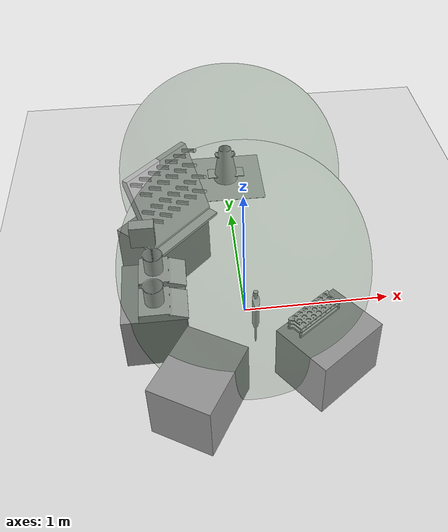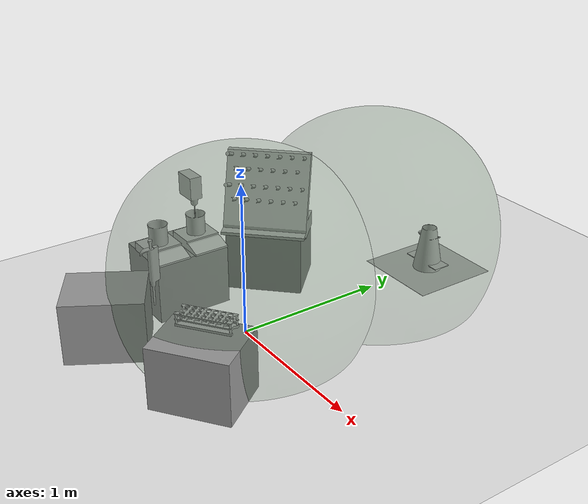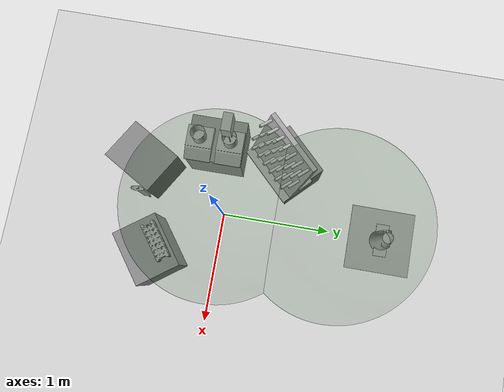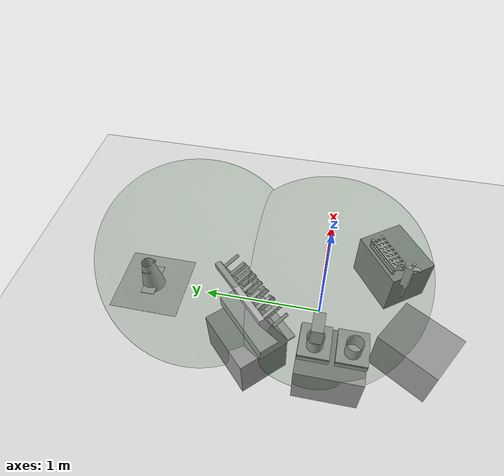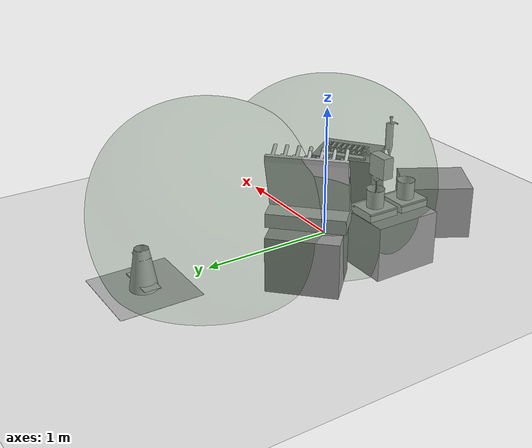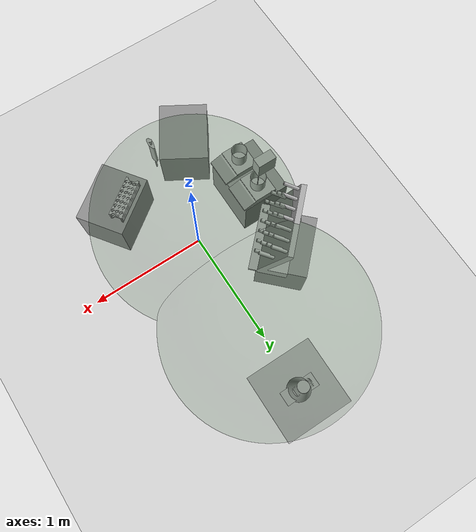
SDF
<sdf version="1.7">
 <world name="solution_preparing">
  <plugin name="gz::sim::systems::Physics" filename="gz-sim-physics-system"/>
  <plugin name="gz::sim::systems::UserCommands" filename="gz-sim-user-commands-system"/>
  <plugin name="gz::sim::systems::SceneBroadcaster" filename="gz-sim-scene-broadcaster-system"/>
  <light name="sun" type="directional">
   <pose>0 0 10 0 -0 0</pose>
   <diffuse>0.8 0.8 0.8 1</diffuse>
   <specular>0.2 0.2 0.2 1</specular>
   <attenuation>
    <range>1000</range>
    <constant>0.9</constant>
    <linear>0.01</linear>
    <quadratic>0.001</quadratic>
   </attenuation>
   <direction>-0.5 0.1 -0.9</direction>
   <spot><inner_angle>0</inner_angle><outer_angle>0</outer_angle><falloff>0</falloff></spot>
  </light>
  <model name="ground_plane">
   <static>1</static>
   <link name="link">
    <collision name="collision">
     <geometry><plane><normal>0 0 1</normal><size>1 1</size></plane></geometry>
    </collision>
    <visual name="visual">
     <geometry><plane><normal>0 0 1</normal><size>100 100</size></plane></geometry>
     <material>
      <ambient>0.8 0.8 0.8 1</ambient>
      <diffuse>0.8 0.8 0.8 1</diffuse>
      <specular>0.8 0.8 0.8 1</specular>
     </material>
    </visual>
   </link>
  </model>
  <model name="cone">
   <pose>0 1.5 0 0 -0 0</pose>
   <static>1</static>
   <link name="link">
    <collision name="collision">
     <geometry><mesh><uri>file://models/analyze/meshes/cone.stl</uri><scale>1 1 1</scale></mesh></geometry>
    </collision>
    <visual name="visual">
     <geometry><mesh><uri>file://models/analyze/meshes/cone.stl</uri><scale>1 1 1</scale></mesh></geometry>
    </visual>
   </link>
  </model>
  <model name="sheet">
   <pose>0 1.5 0 0 -0 0</pose>
   <static>1</static>
   <link name="link">
    <collision name="collision">
     <geometry><mesh><uri>file://models/analyze/meshes/sheet.stl</uri><scale>1 1 1</scale></mesh></geometry>
    </collision>
    <visual name="visual">
     <geometry><mesh><uri>file://models/analyze/meshes/sheet.stl</uri><scale>1 1 1</scale></mesh></geometry>
    </visual>
   </link>
  </model>
  <model name="scale">
   <pose>-0.53 0 0.4 0 -0 1.5708</pose>
   <static>1</static>
   <link name="link">
    <collision name="collision">
     <geometry><mesh><uri>file://models/solution_preparing/scale.stl</uri><scale>1 1 1</scale></mesh></geometry>
    </collision>
    <visual name="visual">
     <geometry><mesh><uri>file://models/solution_preparing/scale.stl</uri><scale>1 1 1</scale></mesh></geometry>
    </visual>
   </link>
  </model>
  <model name="tube_tripod">
   <pose>0.37052 -0.471781 0.4 0 0 -2.51458</pose>
   <static>1</static>
   <link name="link">
    <collision name="collision">
     <geometry>
      <mesh><uri>file://models/solution_preparing/tube_tripod.stl</uri><scale>1 1 1</scale></mesh>
     </geometry>
    </collision>
    <visual name="visual">
     <geometry>
      <mesh><uri>file://models/solution_preparing/tube_tripod.stl</uri><scale>1 1 1</scale></mesh>
     </geometry>
    </visual>
   </link>
  </model>
  <model name="stirrer">
   <pose>-0.58 0 0.4 0 -0 1.5708</pose>
   <static>1</static>
   <link name="link">
    <collision name="collision">
     <geometry><mesh><uri>file://models/solution_preparing/stirrer.stl</uri><scale>1 1 1</scale></mesh></geometry>
    </collision>
    <visual name="visual">
     <geometry><mesh><uri>file://models/solution_preparing/stirrer.stl</uri><scale>1 1 1</scale></mesh></geometry>
    </visual>
   </link>
  </model>
  <model name="dryer">
   <pose>-0.52 0.54 0.4 0 0 -0.785397</pose>
   <static>1</static>
   <link name="link">
    <collision name="collision">
     <geometry><mesh><uri>file://models/solution_preparing/dryer.stl</uri><scale>1 1 1</scale></mesh></geometry>
    </collision>
    <visual name="visual">
     <geometry><mesh><uri>file://models/solution_preparing/dryer.stl</uri><scale>1 1 1</scale></mesh></geometry>
    </visual>
   </link>
  </model>
  <model name="dosator">
   <pose>0 -0.6 0.4 0 -0 1.56841</pose>
   <static>1</static>
   <link name="link">
    <collision name="collision">
     <geometry><mesh><uri>file://models/solution_preparing/dosator.stl</uri><scale>1 1 1</scale></mesh></geometry>
    </collision>
    <visual name="visual">
     <geometry><mesh><uri>file://models/solution_preparing/dosator.stl</uri><scale>1 1 1</scale></mesh></geometry>
    </visual>
   </link>
  </model>
  <model name="beaker_2l">
   <pose>-0.58 0 0.46 0 -0 0</pose>
   <static>1</static>
   <link name="link">
    <collision name="collision">
     <geometry><mesh><uri>file://models/solution_preparing/beaker.stl</uri><scale>1 1 1</scale></mesh></geometry>
    </collision>
    <visual name="visual">
     <geometry><mesh><uri>file://models/solution_preparing/beaker.stl</uri><scale>1 1 1</scale></mesh></geometry>
    </visual>
   </link>
  </model>
  <gravity>0 0 -9.8</gravity>
  <magnetic_field>6e-06 2.3e-05 -4.2e-05</magnetic_field>
  <atmosphere type="adiabatic"/>
  <physics type="ode">
   <max_step_size>0.001</max_step_size>
   <real_time_factor>1</real_time_factor>
   <real_time_update_rate>1000</real_time_update_rate>
  </physics>
  <scene><ambient>0.4 0.4 0.4 1</ambient><background>0.7 0.7 0.7 1</background><shadows>1</shadows></scene>
  <audio><device>default</device></audio>
  <spherical_coordinates>
   <surface_model>EARTH_WGS84</surface_model>
   <latitude_deg>0</latitude_deg>
   <longitude_deg>0</longitude_deg>
   <elevation>0</elevation>
   <heading_deg>0</heading_deg>
  </spherical_coordinates>
  <model name="scale_clone">
   <pose>-0.53 -0.27 0.4 0 -0 1.5708</pose>
   <static>1</static>
   <link name="link">
    <collision name="collision">
     <geometry><mesh><uri>file://models/solution_preparing/scale.stl</uri><scale>1 1 1</scale></mesh></geometry>
    </collision>
    <visual name="visual">
     <geometry><mesh><uri>file://models/solution_preparing/scale.stl</uri><scale>1 1 1</scale></mesh></geometry>
    </visual>
   </link>
  </model>
  <model name="beaker_2l_clone">
   <pose>-0.58 -0.27 0.46 0 -0 0</pose>
   <static>1</static>
   <link name="link">
    <collision name="collision">
     <geometry><mesh><uri>file://models/solution_preparing/beaker.stl</uri><scale>1 1 1</scale></mesh></geometry>
    </collision>
    <visual name="visual">
     <geometry><mesh><uri>file://models/solution_preparing/beaker.stl</uri><scale>1 1 1</scale></mesh></geometry>
    </visual>
   </link>
  </model>
  <model name="table">
   <link name="link">
    <inertial>
     <mass>1</mass>
     <inertia>
      <ixx>0.166667</ixx>
      <ixy>0</ixy>
      <ixz>0</ixz>
      <iyy>0.166667</iyy>
      <iyz>0</iyz>
      <izz>0.166667</izz>
     </inertia>
    </inertial>
    <pose>-0.207638 -0.037405 0 0 -0 0.785398</pose>
    <visual name="visual">
     <geometry><box><size>0.5 0.4 0.4</size></box></geometry>
     <material>
      <script><name>Gazebo/Grey</name><uri>file://media/materials/scripts/gazebo.material</uri></script>
      <shader type="pixel"><normal_map>__default__</normal_map></shader>
      <ambient>0.3 0.3 0.3 1</ambient>
      <diffuse>0.7 0.7 0.7 1</diffuse>
      <specular>0.01 0.01 0.01 1</specular>
      <emissive>0 0 0 1</emissive>
     </material>
    </visual>
    <collision name="collision">
     <geometry><box><size>0.5 0.4 0.4</size></box></geometry>
     <surface>
      <friction>
       <ode><mu>1</mu><mu2>1</mu2><fdir1>0 0 0</fdir1><slip1>0</slip1><slip2>0</slip2></ode>
       <torsional>
        <coefficient>1</coefficient>
        <patch_radius>0</patch_radius>
        <surface_radius>0</surface_radius>
        <use_patch_radius>1</use_patch_radius>
        <ode><slip>0</slip></ode>
       </torsional>
      </friction>
      <bounce><restitution_coefficient>0</restitution_coefficient><threshold>1e+06</threshold></bounce>
      <contact>
       <collide_without_contact>0</collide_without_contact>
       <collide_without_contact_bitmask>1</collide_without_contact_bitmask>
       <collide_bitmask>1</collide_bitmask>
       <ode>
        <soft_cfm>0</soft_cfm>
        <soft_erp>0.2</soft_erp>
        <kp>1e+13</kp>
        <kd>1</kd>
        <max_vel>0.01</max_vel>
        <min_depth>0</min_depth>
       </ode>
       <bullet>
        <split_impulse>1</split_impulse>
        <split_impulse_penetration_threshold>-0.01</split_impulse_penetration_threshold>
        <soft_cfm>0</soft_cfm>
        <soft_erp>0.2</soft_erp>
        <kp>1e+13</kp>
        <kd>1</kd>
       </bullet>
      </contact>
     </surface>
    </collision>
   </link>
   <static>0</static>
   <pose>0.240024 -0.559846 0.2 0 -0 2.9831</pose>
  </model>
  <model name="table_clone">
   <link name="link">
    <inertial>
     <mass>1</mass>
     <inertia>
      <ixx>0.166667</ixx>
      <ixy>0</ixy>
      <ixz>0</ixz>
      <iyy>0.166667</iyy>
      <iyz>0</iyz>
      <izz>0.166667</izz>
     </inertia>
    </inertial>
    <pose>-0.207638 -0.037405 0 0 -0 0.785398</pose>
    <visual name="visual">
     <geometry><box><size>0.5 0.4 0.4</size></box></geometry>
     <material>
      <script><name>Gazebo/Grey</name><uri>file://media/materials/scripts/gazebo.material</uri></script>
      <shader type="pixel"><normal_map>__default__</normal_map></shader>
      <ambient>0.3 0.3 0.3 1</ambient>
      <diffuse>0.7 0.7 0.7 1</diffuse>
      <specular>0.01 0.01 0.01 1</specular>
      <emissive>0 0 0 1</emissive>
     </material>
    </visual>
    <collision name="collision">
     <geometry><box><size>0.5 0.4 0.4</size></box></geometry>
     <surface>
      <friction>
       <ode><mu>1</mu><mu2>1</mu2><fdir1>0 0 0</fdir1><slip1>0</slip1><slip2>0</slip2></ode>
       <torsional>
        <coefficient>1</coefficient>
        <patch_radius>0</patch_radius>
        <surface_radius>0</surface_radius>
        <use_patch_radius>1</use_patch_radius>
        <ode><slip>0</slip></ode>
       </torsional>
      </friction>
      <bounce><restitution_coefficient>0</restitution_coefficient><threshold>1e+06</threshold></bounce>
      <contact>
       <collide_without_contact>0</collide_without_contact>
       <collide_without_contact_bitmask>1</collide_without_contact_bitmask>
       <collide_bitmask>1</collide_bitmask>
       <ode>
        <soft_cfm>0</soft_cfm>
        <soft_erp>0.2</soft_erp>
        <kp>1e+13</kp>
        <kd>1</kd>
        <max_vel>0.01</max_vel>
        <min_depth>0</min_depth>
       </ode>
       <bullet>
        <split_impulse>1</split_impulse>
        <split_impulse_penetration_threshold>-0.01</split_impulse_penetration_threshold>
        <soft_cfm>0</soft_cfm>
        <soft_erp>0.2</soft_erp>
        <kp>1e+13</kp>
        <kd>1</kd>
       </bullet>
      </contact>
     </surface>
    </collision>
   </link>
   <static>0</static>
   <pose>-0.306124 0.555727 0.2 0 -0 0</pose>
  </model>
  <model name="table_clone_0">
   <link name="link">
    <inertial>
     <mass>1</mass>
     <inertia>
      <ixx>0.166667</ixx>
      <ixy>0</ixy>
      <ixz>0</ixz>
      <iyy>0.166667</iyy>
      <iyz>0</iyz>
      <izz>0.166667</izz>
     </inertia>
    </inertial>
    <pose>-0.207638 -0.037405 0 0 -0 0.785398</pose>
    <visual name="visual">
     <geometry><box><size>0.5 0.4 0.4</size></box></geometry>
     <material>
      <script><name>Gazebo/Grey</name><uri>file://media/materials/scripts/gazebo.material</uri></script>
      <shader type="pixel"><normal_map>__default__</normal_map></shader>
      <ambient>0.3 0.3 0.3 1</ambient>
      <diffuse>0.7 0.7 0.7 1</diffuse>
      <specular>0.01 0.01 0.01 1</specular>
      <emissive>0 0 0 1</emissive>
     </material>
    </visual>
    <collision name="collision">
     <geometry><box><size>0.5 0.4 0.4</size></box></geometry>
     <surface>
      <friction>
       <ode><mu>1</mu><mu2>1</mu2><fdir1>0 0 0</fdir1><slip1>0</slip1><slip2>0</slip2></ode>
       <torsional>
        <coefficient>1</coefficient>
        <patch_radius>0</patch_radius>
        <surface_radius>0</surface_radius>
        <use_patch_radius>1</use_patch_radius>
        <ode><slip>0</slip></ode>
       </torsional>
      </friction>
      <bounce><restitution_coefficient>0</restitution_coefficient><threshold>1e+06</threshold></bounce>
      <contact>
       <collide_without_contact>0</collide_without_contact>
       <collide_without_contact_bitmask>1</collide_without_contact_bitmask>
       <collide_bitmask>1</collide_bitmask>
       <ode>
        <soft_cfm>0</soft_cfm>
        <soft_erp>0.2</soft_erp>
        <kp>1e+13</kp>
        <kd>1</kd>
        <max_vel>0.01</max_vel>
        <min_depth>0</min_depth>
       </ode>
       <bullet>
        <split_impulse>1</split_impulse>
        <split_impulse_penetration_threshold>-0.01</split_impulse_penetration_threshold>
        <soft_cfm>0</soft_cfm>
        <soft_erp>0.2</soft_erp>
        <kp>1e+13</kp>
        <kd>1</kd>
       </bullet>
      </contact>
     </surface>
    </collision>
   </link>
   <static>0</static>
   <pose>-0.154168 -0.669839 0.2 0 -0 0.248011</pose>
  </model>
  <model name="table_clone_1">
   <link name="link">
    <inertial>
     <mass>1</mass>
     <inertia>
      <ixx>0.166667</ixx>
      <ixy>0</ixy>
      <ixz>0</ixz>
      <iyy>0.166667</iyy>
      <iyz>0</iyz>
      <izz>0.166667</izz>
     </inertia>
    </inertial>
    <pose>-0.207638 -0.037405 0 0 -0 0.785398</pose>
    <visual name="visual">
     <geometry><box><size>0.5 0.4 0.4</size></box></geometry>
     <material>
      <script><name>Gazebo/Grey</name><uri>file://media/materials/scripts/gazebo.material</uri></script>
      <shader type="pixel"><normal_map>__default__</normal_map></shader>
      <ambient>0.3 0.3 0.3 1</ambient>
      <diffuse>0.7 0.7 0.7 1</diffuse>
      <specular>0.01 0.01 0.01 1</specular>
      <emissive>0 0 0 1</emissive>
     </material>
    </visual>
    <collision name="collision">
     <geometry><box><size>0.5 0.4 0.4</size></box></geometry>
     <surface>
      <friction>
       <ode><mu>1</mu><mu2>1</mu2><fdir1>0 0 0</fdir1><slip1>0</slip1><slip2>0</slip2></ode>
       <torsional>
        <coefficient>1</coefficient>
        <patch_radius>0</patch_radius>
        <surface_radius>0</surface_radius>
        <use_patch_radius>1</use_patch_radius>
        <ode><slip>0</slip></ode>
       </torsional>
      </friction>
      <bounce><restitution_coefficient>0</restitution_coefficient><threshold>1e+06</threshold></bounce>
      <contact>
       <collide_without_contact>0</collide_without_contact>
       <collide_without_contact_bitmask>1</collide_without_contact_bitmask>
       <collide_bitmask>1</collide_bitmask>
       <ode>
        <soft_cfm>0</soft_cfm>
        <soft_erp>0.2</soft_erp>
        <kp>1e+13</kp>
        <kd>1</kd>
        <max_vel>0.01</max_vel>
        <min_depth>0</min_depth>
       </ode>
       <bullet>
        <split_impulse>1</split_impulse>
        <split_impulse_penetration_threshold>-0.01</split_impulse_penetration_threshold>
        <soft_cfm>0</soft_cfm>
        <soft_erp>0.2</soft_erp>
        <kp>1e+13</kp>
        <kd>1</kd>
       </bullet>
      </contact>
     </surface>
    </collision>
   </link>
   <static>0</static>
   <pose>-0.4715 0.043296 0.2 0 -0 0.785397</pose>
  </model>
  <model name="work_sphere">
   <link name="link_3">
    <inertial>
     <mass>1.79769e+308</mass>
     <inertia>
      <ixx>1.79769e+308</ixx>
      <ixy>0</ixy>
      <ixz>0</ixz>
      <iyy>1.79769e+308</iyy>
      <iyz>0</iyz>
      <izz>1.79769e+308</izz>
     </inertia>
    </inertial>
    <visual name="visual">
     <geometry><mesh><uri>file://models/work_sphere/work_sphere.stl</uri><scale>1 1 1</scale></mesh></geometry>
     <material>
      <lighting>1</lighting>
      <script><uri>file://media/materials/scripts/gazebo.material</uri><name>Gazebo/Grey</name></script>
      <shader type="vertex"><normal_map>__default__</normal_map></shader>
      <ambient>0 1 0.5 0.5</ambient>
      <diffuse>0 0.2 0 0.2</diffuse>
      <specular>0.01 0.21 0.01 0</specular>
      <emissive>0 0.2 0 0</emissive>
     </material>
     <transparency>0.8</transparency>
    </visual>
    <collision name="collision">
     <geometry><sphere><radius>1.79769e+308</radius></sphere></geometry>
     <surface>
      <friction>
       <ode><mu>1</mu><mu2>1</mu2><fdir1>0 0 0</fdir1><slip1>0</slip1><slip2>0</slip2></ode>
       <torsional>
        <coefficient>1</coefficient>
        <patch_radius>0</patch_radius>
        <surface_radius>0</surface_radius>
        <use_patch_radius>1</use_patch_radius>
        <ode><slip>0</slip></ode>
       </torsional>
      </friction>
      <bounce><restitution_coefficient>0</restitution_coefficient><threshold>1e+06</threshold></bounce>
      <contact>
       <collide_without_contact>0</collide_without_contact>
       <collide_without_contact_bitmask>1</collide_without_contact_bitmask>
       <collide_bitmask>1</collide_bitmask>
       <ode>
        <soft_cfm>0</soft_cfm>
        <soft_erp>0.2</soft_erp>
        <kp>1e+13</kp>
        <kd>1</kd>
        <max_vel>0.01</max_vel>
        <min_depth>0</min_depth>
       </ode>
       <bullet>
        <split_impulse>1</split_impulse>
        <split_impulse_penetration_threshold>-0.01</split_impulse_penetration_threshold>
        <soft_cfm>0</soft_cfm>
        <soft_erp>0.2</soft_erp>
        <kp>1e+13</kp>
        <kd>1</kd>
       </bullet>
      </contact>
     </surface>
    </collision>
   </link>
   <static>0</static>
  </model>
  <model name="work_sphere_2">
   <link name="link_3">
    <inertial>
     <mass>1</mass>
     <inertia>
      <ixx>0.166667</ixx>
      <ixy>0</ixy>
      <ixz>0</ixz>
      <iyy>0.166667</iyy>
      <iyz>0</iyz>
      <izz>0.166667</izz>
     </inertia>
    </inertial>
    <visual name="visual">
     <geometry><mesh><uri>file://models/work_sphere/work_sphere.stl</uri><scale>1 1 1</scale></mesh></geometry>
     <material>
      <lighting>1</lighting>
      <script><uri>file://media/materials/scripts/gazebo.material</uri><name>Gazebo/Grey</name></script>
      <shader type="vertex"><normal_map>__default__</normal_map></shader>
      <ambient>0 0.5 1 0.5</ambient>
      <diffuse>0 0.2 0 0.2</diffuse>
      <specular>0.01 0.21 0.01 0</specular>
      <emissive>0 0.2 0 0</emissive>
     </material>
     <transparency>0.8</transparency>
    </visual>
    <collision name="collision">
     <geometry><sphere><radius>0.005</radius></sphere></geometry>
     <surface>
      <friction>
       <ode><mu>1</mu><mu2>1</mu2><fdir1>0 0 0</fdir1><slip1>0</slip1><slip2>0</slip2></ode>
       <torsional>
        <coefficient>1</coefficient>
        <patch_radius>0</patch_radius>
        <surface_radius>0</surface_radius>
        <use_patch_radius>1</use_patch_radius>
        <ode><slip>0</slip></ode>
       </torsional>
      </friction>
      <bounce><restitution_coefficient>0</restitution_coefficient><threshold>1e+06</threshold></bounce>
      <contact>
       <collide_without_contact>0</collide_without_contact>
       <collide_without_contact_bitmask>1</collide_without_contact_bitmask>
       <collide_bitmask>1</collide_bitmask>
       <ode>
        <soft_cfm>0</soft_cfm>
        <soft_erp>0.2</soft_erp>
        <kp>1e+13</kp>
        <kd>1</kd>
        <max_vel>0.01</max_vel>
        <min_depth>0</min_depth>
       </ode>
       <bullet>
        <split_impulse>1</split_impulse>
        <split_impulse_penetration_threshold>-0.01</split_impulse_penetration_threshold>
        <soft_cfm>0</soft_cfm>
        <soft_erp>0.2</soft_erp>
        <kp>1e+13</kp>
        <kd>1</kd>
       </bullet>
      </contact>
     </surface>
    </collision>
   </link>
   <static>0</static>
   <pose>0 1 0.005 0 -0 0</pose>
  </model>
 </world>
</sdf>
